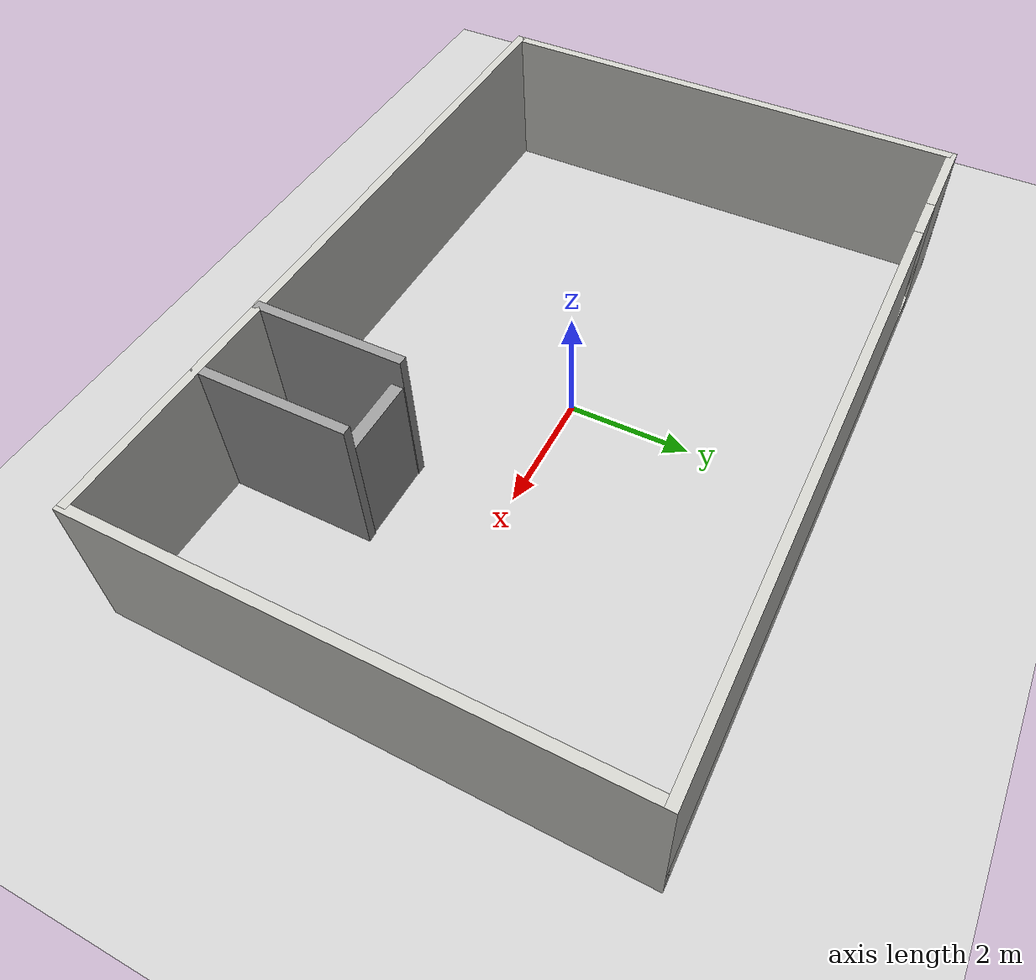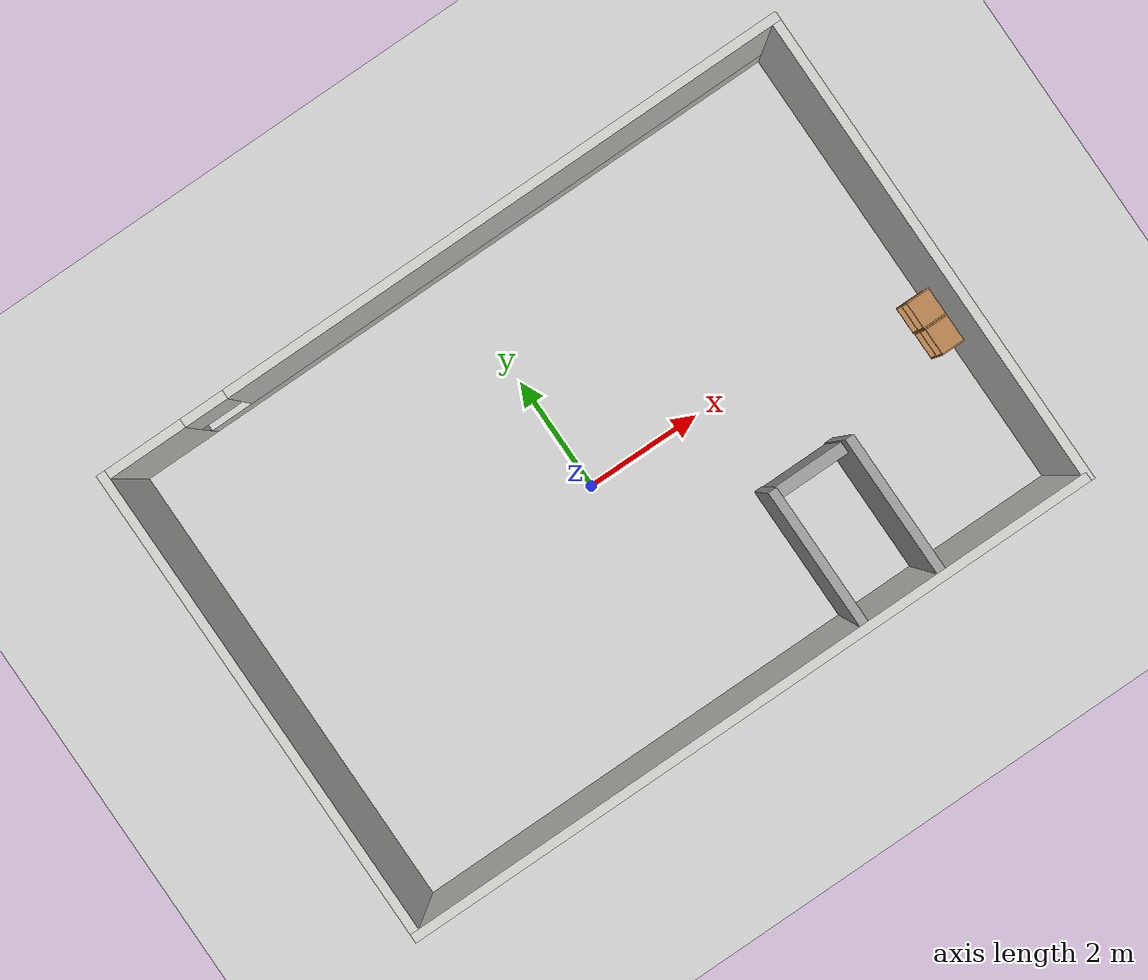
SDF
<sdf version="1.6">
 <world name="default">
  <light name="sun" type="directional">
   <pose>0 0 10 0 -0 0</pose>
   <diffuse>0.8 0.8 0.8 1</diffuse>
   <specular>0.2 0.2 0.2 1</specular>
   <attenuation>
    <range>1000</range>
    <constant>0.9</constant>
    <linear>0.01</linear>
    <quadratic>0.001</quadratic>
   </attenuation>
   <direction>-0.5 0.1 -0.9</direction>
  </light>
  <model name="ground_plane">
   <pose>0 0 0 0 -0 -2.21237</pose>
   <static>1</static>
   <link name="link">
    <collision name="collision">
     <geometry><plane><normal>0 0 1</normal><size>100 100</size></plane></geometry>
     <surface><friction><ode><mu>100</mu><mu2>50</mu2></ode></friction></surface>
    </collision>
    <visual name="visual">
     <cast_shadows>0</cast_shadows>
     <geometry><plane><normal>0 0 1</normal><size>100 100</size></plane></geometry>
     <material>
      <script><uri>file://media/materials/scripts/gazebo.material</uri><name>Gazebo/Grey</name></script>
     </material>
    </visual>
   </link>
  </model>
  <gravity>0 0 -9.8</gravity>
  <magnetic_field>6e-06 2.3e-05 -4.2e-05</magnetic_field>
  <atmosphere type="adiabatic"/>
  <physics name="default_physics" default="0" type="ode">
   <max_step_size>0.001</max_step_size>
   <real_time_factor>1</real_time_factor>
   <real_time_update_rate>1000</real_time_update_rate>
  </physics>
  <scene><ambient>0.4 0.4 0.4 1</ambient><background>0.7 0.7 0.7 1</background><shadows>1</shadows></scene>
  <audio><device>default</device></audio>
  <spherical_coordinates>
   <surface_model>EARTH_WGS84</surface_model>
   <latitude_deg>0</latitude_deg>
   <longitude_deg>0</longitude_deg>
   <elevation>0</elevation>
   <heading_deg>0</heading_deg>
  </spherical_coordinates>
  <model name="Personalized_house">
   <pose>0.13117 0.08858 0 0 -0 0</pose>
   <link name="Door_0">
    <collision name="Door_0_Collision">
     <geometry><box><size>1.19733 0.2 2</size></box></geometry>
     <pose>0 0 1 0 -0 0</pose>
    </collision>
    <visual name="Door_0_Visual">
     <pose>0 0 1 0 -0 0</pose>
     <geometry><box><size>1.19733 0.2 2</size></box></geometry>
     <material>
      <script><uri>file://media/materials/scripts/gazebo.material</uri><name>Gazebo/Grey</name></script>
     </material>
    </visual>
    <pose>2.70071 -1.72252 0 0 -0 0</pose>
   </link>
   <link name="Wall_0">
    <collision name="Wall_0_Collision">
     <geometry><box><size>11.9365 0.15 2.5</size></box></geometry>
     <pose>0 0 1.25 0 -0 0</pose>
    </collision>
    <visual name="Wall_0_Visual">
     <pose>0 0 1.25 0 -0 0</pose>
     <geometry><box><size>11.9365 0.15 2.5</size></box></geometry>
     <material>
      <script><uri>file://media/materials/scripts/gazebo.material</uri><name>Gazebo/CeilingTiled</name></script>
      <ambient>0.996078 0.47451 0.0196078 1</ambient>
     </material>
     <meta><layer>0</layer></meta>
    </visual>
    <pose>-0.031769 -4.05 0 0 -0 3.14159</pose>
   </link>
   <link name="Wall_10">
    <collision name="Wall_10_Collision">
     <geometry><box><size>2.5 0.15 2.5</size></box></geometry>
     <pose>0 0 1.25 0 -0 0</pose>
    </collision>
    <visual name="Wall_10_Visual">
     <pose>0 0 1.25 0 -0 0</pose>
     <geometry><box><size>2.5 0.15 2.5</size></box></geometry>
     <material>
      <script><uri>file://media/materials/scripts/gazebo.material</uri><name>Gazebo/Grey</name></script>
      <ambient>1 1 1 1</ambient>
     </material>
     <meta><layer>0</layer></meta>
    </visual>
    <pose>3.38282 -2.85621 0 0 -0 1.5708</pose>
   </link>
   <link name="Wall_13">
    <collision name="Wall_13_Collision">
     <geometry><box><size>2.5 0.15 2.5</size></box></geometry>
     <pose>0 0 1.25 0 -0 0</pose>
    </collision>
    <visual name="Wall_13_Visual">
     <pose>0 0 1.25 0 -0 0</pose>
     <geometry><box><size>2.5 0.15 2.5</size></box></geometry>
     <material>
      <script><uri>file://media/materials/scripts/gazebo.material</uri><name>Gazebo/Grey</name></script>
      <ambient>1 1 1 1</ambient>
     </material>
     <meta><layer>0</layer></meta>
    </visual>
    <pose>2.01859 -2.86254 0 0 -0 -1.5708</pose>
   </link>
   <link name="Wall_5">
    <collision name="Wall_5_Collision">
     <geometry><box><size>8.25 0.15 2.5</size></box></geometry>
     <pose>0 0 1.25 0 -0 0</pose>
    </collision>
    <visual name="Wall_5_Visual">
     <pose>0 0 1.25 0 -0 0</pose>
     <geometry><box><size>8.25 0.15 2.5</size></box></geometry>
     <material>
      <script><uri>file://media/materials/scripts/gazebo.material</uri><name>Gazebo/CeilingTiled</name></script>
      <ambient>0.996078 0.47451 0.0196078 1</ambient>
     </material>
     <meta><layer>0</layer></meta>
    </visual>
    <pose>-5.925 -0 0 0 -0 1.5708</pose>
   </link>
   <link name="Wall_6">
    <pose>-0 4.05 0 0 -0 0</pose>
    <visual name="Wall_6_Visual_0">
     <pose>-5.26021 0 1.25 0 -0 0</pose>
     <geometry><box><size>1.47958 0.15 2.5</size></box></geometry>
     <material>
      <script><uri>file://media/materials/scripts/gazebo.material</uri><name>Gazebo/CeilingTiled</name></script>
      <ambient>0.996078 0.47451 0.0196078 1</ambient>
     </material>
     <meta><layer>0</layer></meta>
    </visual>
    <collision name="Wall_6_Collision_0">
     <geometry><box><size>1.47958 0.15 2.5</size></box></geometry>
     <pose>-5.26021 0 1.25 0 -0 0</pose>
    </collision>
    <visual name="Wall_6_Visual_1">
     <pose>0.739791 0 0.25 0 -0 0</pose>
     <geometry><box><size>10.5204 0.15 0.5</size></box></geometry>
     <material>
      <script><uri>file://media/materials/scripts/gazebo.material</uri><name>Gazebo/CeilingTiled</name></script>
      <ambient>0.996078 0.47451 0.0196078 1</ambient>
     </material>
     <meta><layer>0</layer></meta>
    </visual>
    <collision name="Wall_6_Collision_1">
     <geometry><box><size>10.5204 0.15 0.5</size></box></geometry>
     <pose>0.739791 0 0.25 0 -0 0</pose>
    </collision>
    <visual name="Wall_6_Visual_2">
     <pose>1.11356 0 1.5 0 -0 0</pose>
     <geometry><box><size>9.77289 0.15 2</size></box></geometry>
     <material>
      <script><uri>file://media/materials/scripts/gazebo.material</uri><name>Gazebo/CeilingTiled</name></script>
      <ambient>0.996078 0.47451 0.0196078 1</ambient>
     </material>
     <meta><layer>0</layer></meta>
    </visual>
    <collision name="Wall_6_Collision_2">
     <geometry><box><size>9.77289 0.15 2</size></box></geometry>
     <pose>1.11356 0 1.5 0 -0 0</pose>
    </collision>
    <visual name="Wall_6_Visual_3">
     <pose>-4.14665 0 1.9 0 -0 0</pose>
     <geometry><box><size>0.74753 0.15 1.2</size></box></geometry>
     <material>
      <script><uri>file://media/materials/scripts/gazebo.material</uri><name>Gazebo/CeilingTiled</name></script>
      <ambient>0.996078 0.47451 0.0196078 1</ambient>
     </material>
     <meta><layer>0</layer></meta>
    </visual>
    <collision name="Wall_6_Collision_3">
     <geometry><box><size>0.74753 0.15 1.2</size></box></geometry>
     <pose>-4.14665 0 1.9 0 -0 0</pose>
    </collision>
   </link>
   <link name="Wall_7">
    <collision name="Wall_7_Collision">
     <geometry><box><size>8.25 0.15 2.5</size></box></geometry>
     <pose>0 0 1.25 0 -0 0</pose>
    </collision>
    <visual name="Wall_7_Visual">
     <pose>0 0 1.25 0 -0 0</pose>
     <geometry><box><size>8.25 0.15 2.5</size></box></geometry>
     <material>
      <script><uri>file://media/materials/scripts/gazebo.material</uri><name>Gazebo/CeilingTiled</name></script>
      <ambient>0.996078 0.47451 0.0196078 1</ambient>
     </material>
     <meta><layer>0</layer></meta>
    </visual>
    <pose>5.925 -0 0 0 -0 -1.5708</pose>
   </link>
   <static>1</static>
  </model>
  <model name="cabinet">
   <static>1</static>
   <link name="cabinet_bottom_plate">
    <inertial>
     <pose>0 0 -1 0 -0 0</pose>
     <inertia><ixx>2.05</ixx><ixy>0</ixy><ixz>0</ixz><iyy>2.05</iyy><iyz>0</iyz><izz>2.05</izz></inertia>
     <mass>25</mass>
    </inertial>
    <collision name="cabinet_bottom_plate_geom">
     <pose>0 0 0.01 0 -0 0</pose>
     <geometry><box><size>0.45 0.45 0.02</size></box></geometry>
    </collision>
    <visual name="cabinet_bottom_plate_geom_visual">
     <pose>0 0 0.01 0 -0 0</pose>
     <geometry><box><size>0.45 0.45 0.02</size></box></geometry>
     <material>
      <script><uri>file://media/materials/scripts/gazebo.material</uri><name>Gazebo/Wood</name></script>
     </material>
    </visual>
    <collision name="cabinet_bottom_plate_geom_cabinet_back_plate">
     <pose>0.235 0 0.51 0 -0 0</pose>
     <geometry><box><size>0.02 0.45 1.02</size></box></geometry>
    </collision>
    <visual name="cabinet_bottom_plate_geom_cabinet_back_plate_visual">
     <pose>0.235 0 0.51 0 -0 0</pose>
     <geometry><box><size>0.02 0.45 1.02</size></box></geometry>
     <material>
      <script><uri>file://media/materials/scripts/gazebo.material</uri><name>Gazebo/Wood</name></script>
     </material>
    </visual>
    <collision name="cabinet_bottom_plate_geom_cabinet_left_plate">
     <pose>0 0.235 0.51 0 -0 0</pose>
     <geometry><box><size>0.45 0.02 1.02</size></box></geometry>
    </collision>
    <visual name="cabinet_bottom_plate_geom_cabinet_left_plate_visual">
     <pose>0 0.235 0.51 0 -0 0</pose>
     <geometry><box><size>0.45 0.02 1.02</size></box></geometry>
     <material>
      <script><uri>file://media/materials/scripts/gazebo.material</uri><name>Gazebo/Wood</name></script>
     </material>
    </visual>
    <collision name="cabinet_bottom_plate_geom_cabinet_middle_plate">
     <pose>0 0 0.51 0 -0 0</pose>
     <geometry><box><size>0.45 0.45 0.02</size></box></geometry>
    </collision>
    <visual name="cabinet_bottom_plate_geom_cabinet_middle_plate_visual">
     <pose>0 0 0.51 0 -0 0</pose>
     <geometry><box><size>0.45 0.45 0.02</size></box></geometry>
     <material>
      <script><uri>file://media/materials/scripts/gazebo.material</uri><name>Gazebo/Wood</name></script>
     </material>
    </visual>
    <collision name="cabinet_bottom_plate_geom_cabinet_right_plate">
     <pose>0 -0.235 0.51 0 -0 0</pose>
     <geometry><box><size>0.45 0.02 1.02</size></box></geometry>
    </collision>
    <visual name="cabinet_bottom_plate_geom_cabinet_right_plate_visual">
     <pose>0 -0.235 0.51 0 -0 0</pose>
     <geometry><box><size>0.45 0.02 1.02</size></box></geometry>
     <material>
      <script><uri>file://media/materials/scripts/gazebo.material</uri><name>Gazebo/Wood</name></script>
     </material>
    </visual>
    <collision name="cabinet_bottom_plate_geom_cabinet_top_plate">
     <pose>0 0 1.01 0 -0 0</pose>
     <geometry><box><size>0.45 0.45 0.02</size></box></geometry>
    </collision>
    <visual name="cabinet_bottom_plate_geom_cabinet_top_plate_visual">
     <pose>0 0 1.01 0 -0 0</pose>
     <geometry><box><size>0.45 0.45 0.02</size></box></geometry>
     <material>
      <script><uri>file://media/materials/scripts/gazebo.material</uri><name>Gazebo/Wood</name></script>
     </material>
    </visual>
   </link>
   <pose>5.80808 -1.13583 0 0 -0 0</pose>
  </model>
  <model name="cabinet_0">
   <static>1</static>
   <link name="cabinet_bottom_plate">
    <inertial>
     <pose>0 0 -1 0 -0 0</pose>
     <inertia><ixx>2.05</ixx><ixy>0</ixy><ixz>0</ixz><iyy>2.05</iyy><iyz>0</iyz><izz>2.05</izz></inertia>
     <mass>25</mass>
    </inertial>
    <collision name="cabinet_bottom_plate_geom">
     <pose>0 0 0.01 0 -0 0</pose>
     <geometry><box><size>0.45 0.45 0.02</size></box></geometry>
    </collision>
    <visual name="cabinet_bottom_plate_geom_visual">
     <pose>0 0 0.01 0 -0 0</pose>
     <geometry><box><size>0.45 0.45 0.02</size></box></geometry>
     <material>
      <script><uri>file://media/materials/scripts/gazebo.material</uri><name>Gazebo/Wood</name></script>
     </material>
    </visual>
    <collision name="cabinet_bottom_plate_geom_cabinet_back_plate">
     <pose>0.235 0 0.51 0 -0 0</pose>
     <geometry><box><size>0.02 0.45 1.02</size></box></geometry>
    </collision>
    <visual name="cabinet_bottom_plate_geom_cabinet_back_plate_visual">
     <pose>0.235 0 0.51 0 -0 0</pose>
     <geometry><box><size>0.02 0.45 1.02</size></box></geometry>
     <material>
      <script><uri>file://media/materials/scripts/gazebo.material</uri><name>Gazebo/Wood</name></script>
     </material>
    </visual>
    <collision name="cabinet_bottom_plate_geom_cabinet_left_plate">
     <pose>0 0.235 0.51 0 -0 0</pose>
     <geometry><box><size>0.45 0.02 1.02</size></box></geometry>
    </collision>
    <visual name="cabinet_bottom_plate_geom_cabinet_left_plate_visual">
     <pose>0 0.235 0.51 0 -0 0</pose>
     <geometry><box><size>0.45 0.02 1.02</size></box></geometry>
     <material>
      <script><uri>file://media/materials/scripts/gazebo.material</uri><name>Gazebo/Wood</name></script>
     </material>
    </visual>
    <collision name="cabinet_bottom_plate_geom_cabinet_middle_plate">
     <pose>0 0 0.51 0 -0 0</pose>
     <geometry><box><size>0.45 0.45 0.02</size></box></geometry>
    </collision>
    <visual name="cabinet_bottom_plate_geom_cabinet_middle_plate_visual">
     <pose>0 0 0.51 0 -0 0</pose>
     <geometry><box><size>0.45 0.45 0.02</size></box></geometry>
     <material>
      <script><uri>file://media/materials/scripts/gazebo.material</uri><name>Gazebo/Wood</name></script>
     </material>
    </visual>
    <collision name="cabinet_bottom_plate_geom_cabinet_right_plate">
     <pose>0 -0.235 0.51 0 -0 0</pose>
     <geometry><box><size>0.45 0.02 1.02</size></box></geometry>
    </collision>
    <visual name="cabinet_bottom_plate_geom_cabinet_right_plate_visual">
     <pose>0 -0.235 0.51 0 -0 0</pose>
     <geometry><box><size>0.45 0.02 1.02</size></box></geometry>
     <material>
      <script><uri>file://media/materials/scripts/gazebo.material</uri><name>Gazebo/Wood</name></script>
     </material>
    </visual>
    <collision name="cabinet_bottom_plate_geom_cabinet_top_plate">
     <pose>0 0 1.01 0 -0 0</pose>
     <geometry><box><size>0.45 0.45 0.02</size></box></geometry>
    </collision>
    <visual name="cabinet_bottom_plate_geom_cabinet_top_plate_visual">
     <pose>0 0 1.01 0 -0 0</pose>
     <geometry><box><size>0.45 0.45 0.02</size></box></geometry>
     <material>
      <script><uri>file://media/materials/scripts/gazebo.material</uri><name>Gazebo/Wood</name></script>
     </material>
    </visual>
   </link>
   <pose>5.79761 -0.641203 0 0 -0 0</pose>
  </model>
 </world>
</sdf>
